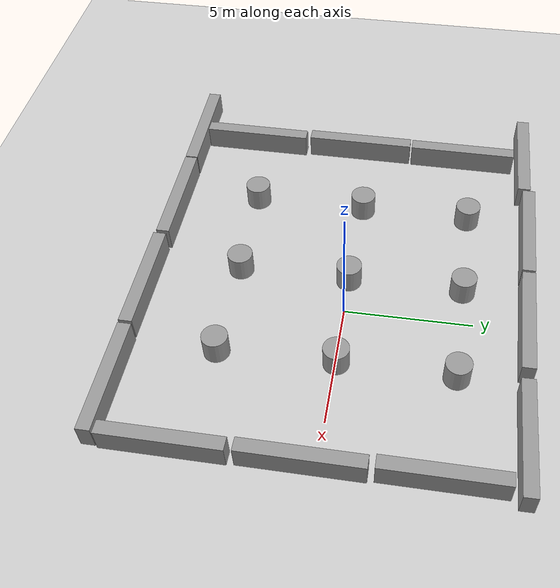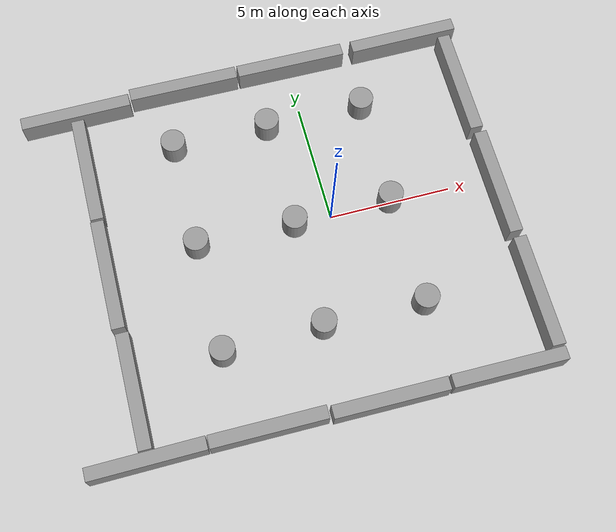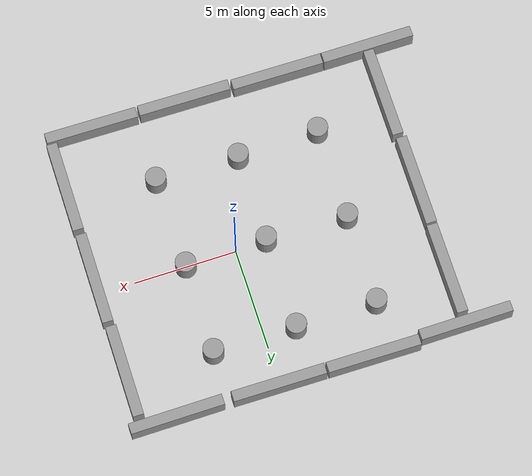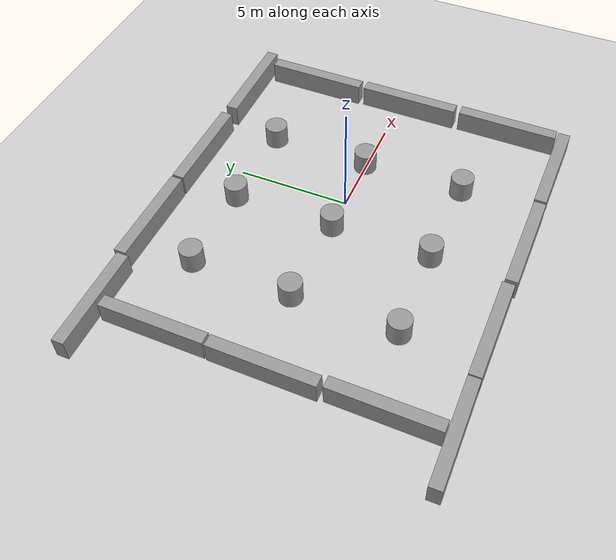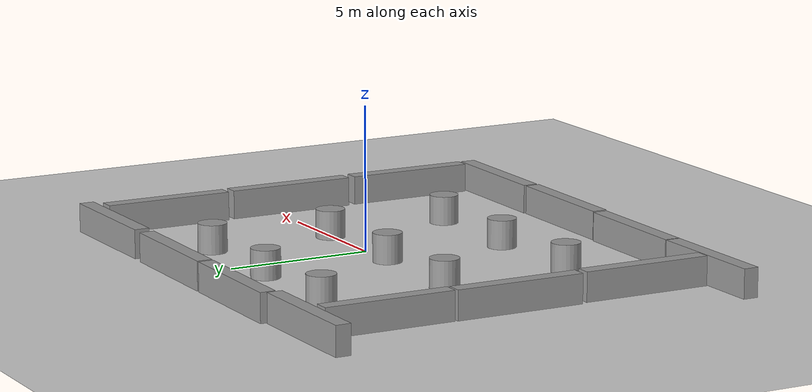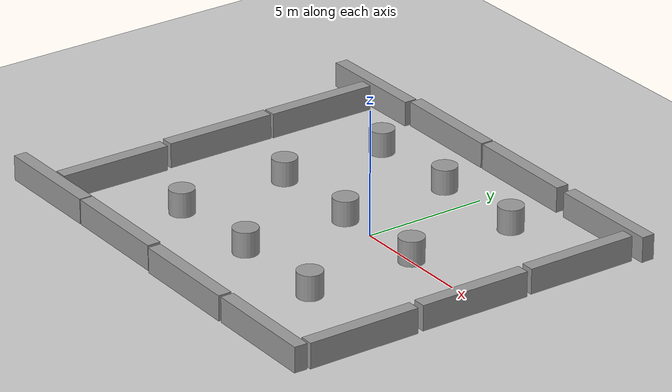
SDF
<sdf version="1.7">
 <world name="default">
  <light name="sun" type="directional">
   <pose>0 0 10 0 -0 0</pose>
   <diffuse>0.8 0.8 0.8 1</diffuse>
   <specular>0.2 0.2 0.2 1</specular>
   <attenuation>
    <range>1000</range>
    <constant>0.9</constant>
    <linear>0.01</linear>
    <quadratic>0.001</quadratic>
   </attenuation>
   <direction>-0.5 0.1 -0.9</direction>
   <spot><inner_angle>0</inner_angle><outer_angle>0</outer_angle><falloff>0</falloff></spot>
  </light>
  <model name="ground_plane">
   <static>1</static>
   <link name="link">
    <collision name="collision">
     <geometry><plane><normal>0 0 1</normal><size>100 100</size></plane></geometry>
     <surface><friction><ode><mu>100</mu><mu2>50</mu2></ode></friction></surface>
    </collision>
    <visual name="visual">
     <cast_shadows>0</cast_shadows>
     <geometry><plane><normal>0 0 1</normal><size>100 100</size></plane></geometry>
     <material>
      <script><uri>file://media/materials/scripts/gazebo.material</uri><name>Gazebo/Grey</name></script>
     </material>
    </visual>
   </link>
  </model>
  <gravity>0 0 -9.8</gravity>
  <magnetic_field>6e-06 2.3e-05 -4.2e-05</magnetic_field>
  <atmosphere type="adiabatic"/>
  <physics type="ode">
   <max_step_size>0.001</max_step_size>
   <real_time_factor>1</real_time_factor>
   <real_time_update_rate>1000</real_time_update_rate>
  </physics>
  <scene><ambient>0.4 0.4 0.4 1</ambient><background>0.7 0.7 0.7 1</background><shadows>1</shadows></scene>
  <spherical_coordinates>
   <surface_model>EARTH_WGS84</surface_model>
   <latitude_deg>0</latitude_deg>
   <longitude_deg>0</longitude_deg>
   <elevation>0</elevation>
   <heading_deg>0</heading_deg>
  </spherical_coordinates>
  <model name="unit_cylinder">
   <pose>-5.48366 4.50844 0.499994 -3e-06 -1e-06 -0</pose>
   <link name="link">
    <inertial>
     <mass>1</mass>
     <inertia><ixx>0.145833</ixx><ixy>0</ixy><ixz>0</ixz><iyy>0.145833</iyy><iyz>0</iyz><izz>0.125</izz></inertia>
    </inertial>
    <collision name="collision">
     <geometry><cylinder><radius>0.5</radius><length>1</length></cylinder></geometry>
    </collision>
    <visual name="visual">
     <geometry><cylinder><radius>0.5</radius><length>1</length></cylinder></geometry>
     <material>
      <script><name>Gazebo/Grey</name><uri>file://media/materials/scripts/gazebo.material</uri></script>
     </material>
    </visual>
   </link>
  </model>
  <model name="unit_cylinder_0">
   <pose>-5.52962 0.076658 0.499996 3e-06 1e-06 -0</pose>
   <link name="link">
    <inertial>
     <mass>1</mass>
     <inertia><ixx>0.145833</ixx><ixy>0</ixy><ixz>0</ixz><iyy>0.145833</iyy><iyz>0</iyz><izz>0.125</izz></inertia>
    </inertial>
    <collision name="collision">
     <geometry><cylinder><radius>0.5</radius><length>1</length></cylinder></geometry>
    </collision>
    <visual name="visual">
     <geometry><cylinder><radius>0.5</radius><length>1</length></cylinder></geometry>
     <material>
      <script><name>Gazebo/Grey</name><uri>file://media/materials/scripts/gazebo.material</uri></script>
     </material>
    </visual>
   </link>
  </model>
  <model name="unit_cylinder_1">
   <pose>-5.54704 -4.47581 0.499996 3e-06 1e-06 -0</pose>
   <link name="link">
    <inertial>
     <mass>1</mass>
     <inertia><ixx>0.145833</ixx><ixy>0</ixy><ixz>0</ixz><iyy>0.145833</iyy><iyz>0</iyz><izz>0.125</izz></inertia>
    </inertial>
    <collision name="collision">
     <geometry><cylinder><radius>0.5</radius><length>1</length></cylinder></geometry>
    </collision>
    <visual name="visual">
     <geometry><cylinder><radius>0.5</radius><length>1</length></cylinder></geometry>
     <material>
      <script><name>Gazebo/Grey</name><uri>file://media/materials/scripts/gazebo.material</uri></script>
     </material>
    </visual>
   </link>
  </model>
  <model name="unit_cylinder_2">
   <pose>2.51745 4.48204 0.499996 3e-06 1e-06 -0</pose>
   <link name="link">
    <inertial>
     <mass>1</mass>
     <inertia><ixx>0.145833</ixx><ixy>0</ixy><ixz>0</ixz><iyy>0.145833</iyy><iyz>0</iyz><izz>0.125</izz></inertia>
    </inertial>
    <collision name="collision">
     <geometry><cylinder><radius>0.5</radius><length>1</length></cylinder></geometry>
    </collision>
    <visual name="visual">
     <geometry><cylinder><radius>0.5</radius><length>1</length></cylinder></geometry>
     <material>
      <script><name>Gazebo/Grey</name><uri>file://media/materials/scripts/gazebo.material</uri></script>
     </material>
    </visual>
   </link>
  </model>
  <model name="unit_cylinder_3">
   <pose>-1.52443 -0.006187 0.499996 3e-06 1e-06 -0</pose>
   <link name="link">
    <inertial>
     <mass>1</mass>
     <inertia><ixx>0.145833</ixx><ixy>0</ixy><ixz>0</ixz><iyy>0.145833</iyy><iyz>0</iyz><izz>0.125</izz></inertia>
    </inertial>
    <collision name="collision">
     <geometry><cylinder><radius>0.5</radius><length>1</length></cylinder></geometry>
    </collision>
    <visual name="visual">
     <geometry><cylinder><radius>0.5</radius><length>1</length></cylinder></geometry>
     <material>
      <script><name>Gazebo/Grey</name><uri>file://media/materials/scripts/gazebo.material</uri></script>
     </material>
    </visual>
   </link>
  </model>
  <model name="unit_cylinder_4">
   <pose>-1.53435 -4.38948 0.499993 -2e-06 -1e-06 0</pose>
   <link name="link">
    <inertial>
     <mass>1</mass>
     <inertia><ixx>0.145833</ixx><ixy>0</ixy><ixz>0</ixz><iyy>0.145833</iyy><iyz>0</iyz><izz>0.125</izz></inertia>
    </inertial>
    <collision name="collision">
     <geometry><cylinder><radius>0.5</radius><length>1</length></cylinder></geometry>
    </collision>
    <visual name="visual">
     <geometry><cylinder><radius>0.5</radius><length>1</length></cylinder></geometry>
     <material>
      <script><name>Gazebo/Grey</name><uri>file://media/materials/scripts/gazebo.material</uri></script>
     </material>
    </visual>
   </link>
  </model>
  <model name="unit_cylinder_5">
   <pose>-1.53086 4.50593 0.499996 3e-06 1e-06 -0</pose>
   <link name="link">
    <inertial>
     <mass>1</mass>
     <inertia><ixx>0.145833</ixx><ixy>0</ixy><ixz>0</ixz><iyy>0.145833</iyy><iyz>0</iyz><izz>0.125</izz></inertia>
    </inertial>
    <collision name="collision">
     <geometry><cylinder><radius>0.5</radius><length>1</length></cylinder></geometry>
    </collision>
    <visual name="visual">
     <geometry><cylinder><radius>0.5</radius><length>1</length></cylinder></geometry>
     <material>
      <script><name>Gazebo/Grey</name><uri>file://media/materials/scripts/gazebo.material</uri></script>
     </material>
    </visual>
   </link>
  </model>
  <model name="unit_cylinder_6">
   <pose>2.47465 0.047476 0.499996 3e-06 1e-06 -0</pose>
   <link name="link">
    <inertial>
     <mass>1</mass>
     <inertia><ixx>0.145833</ixx><ixy>0</ixy><ixz>0</ixz><iyy>0.145833</iyy><iyz>0</iyz><izz>0.125</izz></inertia>
    </inertial>
    <collision name="collision">
     <geometry><cylinder><radius>0.5</radius><length>1</length></cylinder></geometry>
    </collision>
    <visual name="visual">
     <geometry><cylinder><radius>0.5</radius><length>1</length></cylinder></geometry>
     <material>
      <script><name>Gazebo/Grey</name><uri>file://media/materials/scripts/gazebo.material</uri></script>
     </material>
    </visual>
   </link>
  </model>
  <model name="unit_cylinder_7">
   <pose>2.55339 -4.44259 0.499994 -3e-06 -1e-06 -0</pose>
   <link name="link">
    <inertial>
     <mass>1</mass>
     <inertia><ixx>0.145833</ixx><ixy>0</ixy><ixz>0</ixz><iyy>0.145833</iyy><iyz>0</iyz><izz>0.125</izz></inertia>
    </inertial>
    <collision name="collision">
     <geometry><cylinder><radius>0.5</radius><length>1</length></cylinder></geometry>
    </collision>
    <visual name="visual">
     <geometry><cylinder><radius>0.5</radius><length>1</length></cylinder></geometry>
     <material>
      <script><name>Gazebo/Grey</name><uri>file://media/materials/scripts/gazebo.material</uri></script>
     </material>
    </visual>
   </link>
  </model>
  <model name="unit_box">
   <pose>-9.10352 4.11898 0.498677 -0.000587 -4e-06 -0.006732</pose>
   <link name="link">
    <inertial>
     <mass>1</mass>
     <inertia>
      <ixx>0.166667</ixx>
      <ixy>0</ixy>
      <ixz>0</ixz>
      <iyy>0.166667</iyy>
      <iyz>0</iyz>
      <izz>0.166667</izz>
     </inertia>
    </inertial>
    <collision name="collision"><geometry><box><size>0.524143 4.51658 1</size></box></geometry></collision>
    <visual name="visual">
     <geometry><box><size>0.524143 4.51658 1</size></box></geometry>
     <material>
      <script><name>Gazebo/Grey</name><uri>file://media/materials/scripts/gazebo.material</uri></script>
     </material>
    </visual>
   </link>
  </model>
  <model name="unit_box_clone">
   <pose>-9.15829 -0.486425 0.498677 0.000587 4e-06 -0.006732</pose>
   <link name="link">
    <inertial>
     <mass>1</mass>
     <inertia>
      <ixx>0.166667</ixx>
      <ixy>0</ixy>
      <ixz>0</ixz>
      <iyy>0.166667</iyy>
      <iyz>0</iyz>
      <izz>0.166667</izz>
     </inertia>
    </inertial>
    <collision name="collision"><geometry><box><size>0.524144 4.51659 1</size></box></geometry></collision>
    <visual name="visual">
     <geometry><box><size>0.524144 4.51659 1</size></box></geometry>
     <material>
      <script><name>Gazebo/Grey</name><uri>file://media/materials/scripts/gazebo.material</uri></script>
     </material>
    </visual>
   </link>
  </model>
  <model name="unit_box_clone_0">
   <pose>-9.09771 -5.20678 0.498677 -0.000587 -4e-06 -0.006732</pose>
   <link name="link">
    <inertial>
     <mass>1</mass>
     <inertia>
      <ixx>0.166667</ixx>
      <ixy>0</ixy>
      <ixz>0</ixz>
      <iyy>0.166667</iyy>
      <iyz>0</iyz>
      <izz>0.166667</izz>
     </inertia>
    </inertial>
    <collision name="collision"><geometry><box><size>0.524144 4.51659 1</size></box></geometry></collision>
    <visual name="visual">
     <geometry><box><size>0.524144 4.51659 1</size></box></geometry>
     <material>
      <script><name>Gazebo/Grey</name><uri>file://media/materials/scripts/gazebo.material</uri></script>
     </material>
    </visual>
   </link>
  </model>
  <model name="unit_box_clone_1">
   <pose>6.78978 -5.29737 0.498677 0.000587 4e-06 -0.006732</pose>
   <link name="link">
    <inertial>
     <mass>1</mass>
     <inertia>
      <ixx>0.166667</ixx>
      <ixy>0</ixy>
      <ixz>0</ixz>
      <iyy>0.166667</iyy>
      <iyz>0</iyz>
      <izz>0.166667</izz>
     </inertia>
    </inertial>
    <collision name="collision"><geometry><box><size>0.524144 4.51659 1</size></box></geometry></collision>
    <visual name="visual">
     <geometry><box><size>0.524144 4.51659 1</size></box></geometry>
     <material>
      <script><name>Gazebo/Grey</name><uri>file://media/materials/scripts/gazebo.material</uri></script>
     </material>
    </visual>
   </link>
  </model>
  <model name="unit_box_clone_2">
   <pose>6.77826 -0.529811 0.498677 -0.000587 -4e-06 -0.006732</pose>
   <link name="link">
    <inertial>
     <mass>1</mass>
     <inertia>
      <ixx>0.166667</ixx>
      <ixy>0</ixy>
      <ixz>0</ixz>
      <iyy>0.166667</iyy>
      <iyz>0</iyz>
      <izz>0.166667</izz>
     </inertia>
    </inertial>
    <collision name="collision"><geometry><box><size>0.524144 4.51659 1</size></box></geometry></collision>
    <visual name="visual">
     <geometry><box><size>0.524144 4.51659 1</size></box></geometry>
     <material>
      <script><name>Gazebo/Grey</name><uri>file://media/materials/scripts/gazebo.material</uri></script>
     </material>
    </visual>
   </link>
  </model>
  <model name="unit_box_clone_3">
   <pose>6.74563 4.21577 0.498677 0.000587 4e-06 -0.006732</pose>
   <link name="link">
    <inertial>
     <mass>1</mass>
     <inertia>
      <ixx>0.166667</ixx>
      <ixy>0</ixy>
      <ixz>0</ixz>
      <iyy>0.166667</iyy>
      <iyz>0</iyz>
      <izz>0.166667</izz>
     </inertia>
    </inertial>
    <collision name="collision"><geometry><box><size>0.524144 4.51659 1</size></box></geometry></collision>
    <visual name="visual">
     <geometry><box><size>0.524144 4.51659 1</size></box></geometry>
     <material>
      <script><name>Gazebo/Grey</name><uri>file://media/materials/scripts/gazebo.material</uri></script>
     </material>
    </visual>
   </link>
  </model>
  <model name="unit_box_clone_4">
   <pose>5.07289 6.94976 0.498677 -0.000587 4e-06 -1.56391</pose>
   <link name="link">
    <inertial>
     <mass>1</mass>
     <inertia>
      <ixx>0.166667</ixx>
      <ixy>0</ixy>
      <ixz>0</ixz>
      <iyy>0.166667</iyy>
      <iyz>0</iyz>
      <izz>0.166667</izz>
     </inertia>
    </inertial>
    <collision name="collision"><geometry><box><size>0.524144 4.51659 1</size></box></geometry></collision>
    <visual name="visual">
     <geometry><box><size>0.524144 4.51659 1</size></box></geometry>
     <material>
      <script><name>Gazebo/Grey</name><uri>file://media/materials/scripts/gazebo.material</uri></script>
     </material>
    </visual>
   </link>
  </model>
  <model name="unit_box_clone_4_clone">
   <pose>0.112782 6.97229 0.498677 -0.000587 -4e-06 -1.57768</pose>
   <link name="link">
    <inertial>
     <mass>1</mass>
     <inertia>
      <ixx>0.166667</ixx>
      <ixy>0</ixy>
      <ixz>0</ixz>
      <iyy>0.166667</iyy>
      <iyz>0</iyz>
      <izz>0.166667</izz>
     </inertia>
    </inertial>
    <collision name="collision"><geometry><box><size>0.524144 4.51659 1</size></box></geometry></collision>
    <visual name="visual">
     <geometry><box><size>0.524144 4.51659 1</size></box></geometry>
     <material>
      <script><name>Gazebo/Grey</name><uri>file://media/materials/scripts/gazebo.material</uri></script>
     </material>
    </visual>
   </link>
  </model>
  <model name="unit_box_clone_4_clone_0">
   <pose>-4.49715 7.00773 0.498677 -0.000587 -4e-06 -1.57768</pose>
   <link name="link">
    <inertial>
     <mass>1</mass>
     <inertia>
      <ixx>0.166667</ixx>
      <ixy>0</ixy>
      <ixz>0</ixz>
      <iyy>0.166667</iyy>
      <iyz>0</iyz>
      <izz>0.166667</izz>
     </inertia>
    </inertial>
    <collision name="collision"><geometry><box><size>0.524144 4.51659 1</size></box></geometry></collision>
    <visual name="visual">
     <geometry><box><size>0.524144 4.51659 1</size></box></geometry>
     <material>
      <script><name>Gazebo/Grey</name><uri>file://media/materials/scripts/gazebo.material</uri></script>
     </material>
    </visual>
   </link>
  </model>
  <model name="unit_box_clone_4_clone_1">
   <pose>4.70905 -7.88897 0.498677 0.000587 4e-06 -1.57768</pose>
   <link name="link">
    <inertial>
     <mass>1</mass>
     <inertia>
      <ixx>0.166667</ixx>
      <ixy>0</ixy>
      <ixz>0</ixz>
      <iyy>0.166667</iyy>
      <iyz>0</iyz>
      <izz>0.166667</izz>
     </inertia>
    </inertial>
    <collision name="collision"><geometry><box><size>0.524144 4.51659 1</size></box></geometry></collision>
    <visual name="visual">
     <geometry><box><size>0.524144 4.51659 1</size></box></geometry>
     <material>
      <script><name>Gazebo/Grey</name><uri>file://media/materials/scripts/gazebo.material</uri></script>
     </material>
    </visual>
   </link>
  </model>
  <model name="unit_box_clone_4_clone_2">
   <pose>0.079661 -7.87813 0.498677 0.000587 4e-06 -1.57768</pose>
   <link name="link">
    <inertial>
     <mass>1</mass>
     <inertia>
      <ixx>0.166667</ixx>
      <ixy>0</ixy>
      <ixz>0</ixz>
      <iyy>0.166667</iyy>
      <iyz>0</iyz>
      <izz>0.166667</izz>
     </inertia>
    </inertial>
    <collision name="collision"><geometry><box><size>0.524144 4.51659 1</size></box></geometry></collision>
    <visual name="visual">
     <geometry><box><size>0.524144 4.51659 1</size></box></geometry>
     <material>
      <script><name>Gazebo/Grey</name><uri>file://media/materials/scripts/gazebo.material</uri></script>
     </material>
    </visual>
   </link>
  </model>
  <model name="unit_box_clone_4_clone_3">
   <pose>-4.58314 -7.77794 0.498677 0.000587 4e-06 -1.57567</pose>
   <link name="link">
    <inertial>
     <mass>1</mass>
     <inertia>
      <ixx>0.166667</ixx>
      <ixy>0</ixy>
      <ixz>0</ixz>
      <iyy>0.166667</iyy>
      <iyz>0</iyz>
      <izz>0.166667</izz>
     </inertia>
    </inertial>
    <collision name="collision"><geometry><box><size>0.524144 4.51659 1</size></box></geometry></collision>
    <visual name="visual">
     <geometry><box><size>0.524144 4.51659 1</size></box></geometry>
     <material>
      <script><name>Gazebo/Grey</name><uri>file://media/materials/scripts/gazebo.material</uri></script>
     </material>
    </visual>
   </link>
  </model>
  <model name="unit_box_clone_4_clone_4">
   <pose>-9.15125 -7.77668 0.498677 -0.000587 4e-06 -1.56592</pose>
   <link name="link">
    <inertial>
     <mass>1</mass>
     <inertia>
      <ixx>0.166667</ixx>
      <ixy>0</ixy>
      <ixz>0</ixz>
      <iyy>0.166667</iyy>
      <iyz>0</iyz>
      <izz>0.166667</izz>
     </inertia>
    </inertial>
    <collision name="collision"><geometry><box><size>0.524144 4.51659 1</size></box></geometry></collision>
    <visual name="visual">
     <geometry><box><size>0.524144 4.51659 1</size></box></geometry>
     <material>
      <script><name>Gazebo/Grey</name><uri>file://media/materials/scripts/gazebo.material</uri></script>
     </material>
    </visual>
   </link>
  </model>
  <model name="unit_box_clone_4_clone_5">
   <pose>-9.0922 6.81581 0.498677 0.000587 -4e-06 -1.56391</pose>
   <link name="link">
    <inertial>
     <mass>1</mass>
     <inertia>
      <ixx>0.166667</ixx>
      <ixy>0</ixy>
      <ixz>0</ixz>
      <iyy>0.166667</iyy>
      <iyz>0</iyz>
      <izz>0.166667</izz>
     </inertia>
    </inertial>
    <collision name="collision"><geometry><box><size>0.524144 4.51659 1</size></box></geometry></collision>
    <visual name="visual">
     <geometry><box><size>0.524144 4.51659 1</size></box></geometry>
     <material>
      <script><name>Gazebo/Grey</name><uri>file://media/materials/scripts/gazebo.material</uri></script>
     </material>
    </visual>
   </link>
  </model>
 </world>
</sdf>
